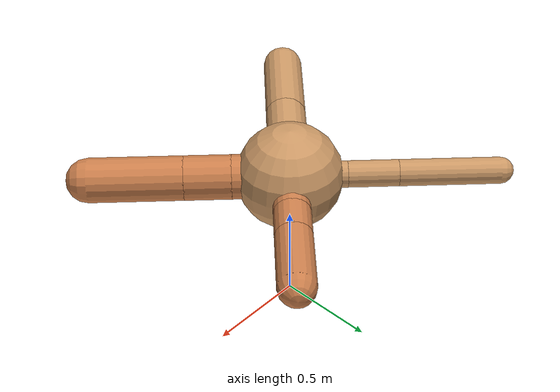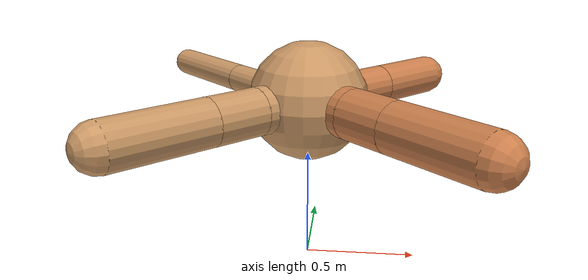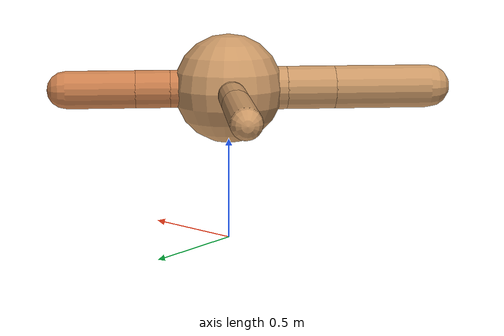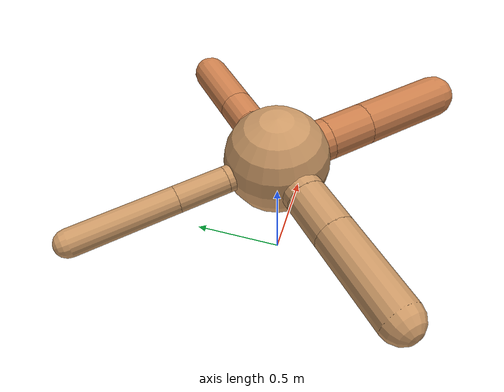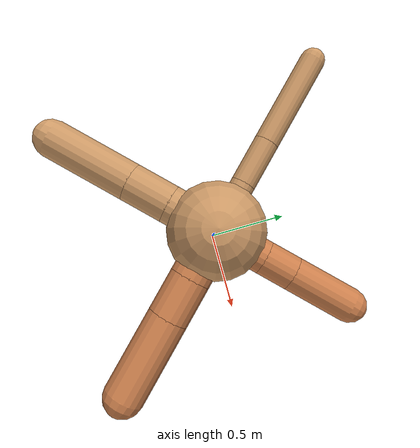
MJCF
<?xml version="1.0" ?>
<mujoco model="ant">

	<compiler angle="degree" coordinate="local" inertiafromgeom="true"/>

	<option integrator="RK4" timestep="0.01"/>

	<custom>

		<numeric data="0.0 0.0 0.55 1.0 0.0 0.0 0.0 0.0 1.0 0.0 -1.0 0.0 -1.0 0.0 1.0" name="init_qpos"/>

	</custom>

	<default>

		<joint armature="1" damping="1" limited="true"/>

		<geom conaffinity="0" condim="3" density="5.0" friction="1.5 0.1 0.1" margin="0.01" rgba="0.8 0.6 0.4 1"/>

	</default>

	<worldbody>

		<body name="torso" pos="0 0 0.75">

			<geom name="torso_geom" pos="0 0 0" size="0.265146687862027" type="sphere"/>

			<!--joint armature="0" damping="0" limited="false" margin="0.01" name="root" pos="0 0 0" type="free"/-->

			<body name="front_left_leg" pos="0 0 0">

				<geom fromto="0 0 0 0.2 0.2 0" name="aux_1_geom" size="0.09131399738730232" type="capsule" rgba=".8 .5 .3 1"/>

				<body name="aux_1" pos="0.2 0.2 0">

					<joint axis="0 0 1" name="hip_1" pos="0.0 0.0 0.0" range="-40 40" type="hinge"/>

					<geom fromto="0 0 0 0.11759378373181449 0.11759378373181449 0" name="left_leg_geom" size="0.09131399738730232" type="capsule" rgba=".8 .5 .3 1"/>

					<body pos="0.11759378373181449 0.11759378373181449 0" name="front_left_foot">

						<joint axis="-1 1 0" name="ankle_1" pos="0.0 0.0 0.0" range="30 100" type="hinge"/>

						<geom fromto="0 0 0 0.23518756746362898 0.23518756746362898 0" name="left_ankle_geom" size="0.09131399738730232" type="capsule" rgba=".8 .5 .3 1"/>

					</body>

				</body>

			</body>

			<body name="front_right_leg" pos="0 0 0">

				<geom fromto="0 0 0 -0.2 0.2 0" name="aux_2_geom" size="0.06644160359607333" type="capsule"/>

				<body name="aux_2" pos="-0.2 0.2 0">

					<joint axis="0 0 1" name="hip_2" pos="0.0 0.0 0.0" range="-40 40" type="hinge"/>

					<geom fromto="0 0 0 -0.17714716568778965 0.17714716568778965 0" name="right_leg_geom" size="0.06644160359607333" type="capsule"/>

					<body pos="-0.17714716568778965 0.17714716568778965 0" name="front_right_foot">

						<joint axis="1 1 0" name="ankle_2" pos="0.0 0.0 0.0" range="-100 -30" type="hinge"/>

						<geom fromto="0 0 0 -0.3542943313755793 0.3542943313755793 0" name="right_ankle_geom" size="0.06644160359607333" type="capsule"/>

					</body>

				</body>

			</body>

			<body name="left_back_leg" pos="0 0 0">

				<geom fromto="0 0 0 -0.2 -0.2 0" name="aux_3_geom" size="0.1046231894920828" type="capsule"/>

				<body name="aux_3" pos="-0.2 -0.2 0">

					<joint axis="0 0 1" name="hip_3" pos="0.0 0.0 0.0" range="-40 40" type="hinge"/>

					<geom fromto="0 0 0 -0.1659963385330953 -0.1659963385330953 0" name="back_leg_geom" size="0.1046231894920828" type="capsule"/>

					<body pos="-0.1659963385330953 -0.1659963385330953 0" name="left_back_foot">

						<joint axis="-1 1 0" name="ankle_3" pos="0.0 0.0 0.0" range="-100 -30" type="hinge"/>

						<geom fromto="0 0 0 -0.3319926770661906 -0.3319926770661906 0" name="third_ankle_geom" size="0.1046231894920828" type="capsule"/>

					</body>

				</body>

			</body>

			<body name="right_back_leg" pos="0 0 0">

				<geom fromto="0 0 0 0.2 -0.2 0" name="aux_4_geom" size="0.11079160003451909" type="capsule" rgba=".8 .5 .3 1"/>

				<body name="aux_4" pos="0.2 -0.2 0">

					<joint axis="0 0 1" name="hip_4" pos="0.0 0.0 0.0" range="-40 40" type="hinge"/>

					<geom fromto="0 0 0 0.16392394392614515 -0.16392394392614515 0" name="rightback_leg_geom" size="0.11079160003451909" type="capsule" rgba=".8 .5 .3 1"/>

					<body pos="0.16392394392614515 -0.16392394392614515 0" name="right_back_foot">

						<joint axis="1 1 0" name="ankle_4" pos="0.0 0.0 0.0" range="30 100" type="hinge"/>

						<geom fromto="0 0 0 0.3278478878522903 -0.3278478878522903 0" name="fourth_ankle_geom" size="0.11079160003451909" type="capsule" rgba=".8 .5 .3 1"/>

					</body>

				</body>

			</body>

		</body>

	</worldbody>

	<actuator>

		<motor ctrllimited="true" ctrlrange="-1.0 1.0" joint="hip_4" gear="150"/>

		<motor ctrllimited="true" ctrlrange="-1.0 1.0" joint="ankle_4" gear="150"/>

		<motor ctrllimited="true" ctrlrange="-1.0 1.0" joint="hip_1" gear="150"/>

		<motor ctrllimited="true" ctrlrange="-1.0 1.0" joint="ankle_1" gear="150"/>

		<motor ctrllimited="true" ctrlrange="-1.0 1.0" joint="hip_2" gear="150"/>

		<motor ctrllimited="true" ctrlrange="-1.0 1.0" joint="ankle_2" gear="150"/>

		<motor ctrllimited="true" ctrlrange="-1.0 1.0" joint="hip_3" gear="150"/>

		<motor ctrllimited="true" ctrlrange="-1.0 1.0" joint="ankle_3" gear="150"/>

	</actuator>

</mujoco>
